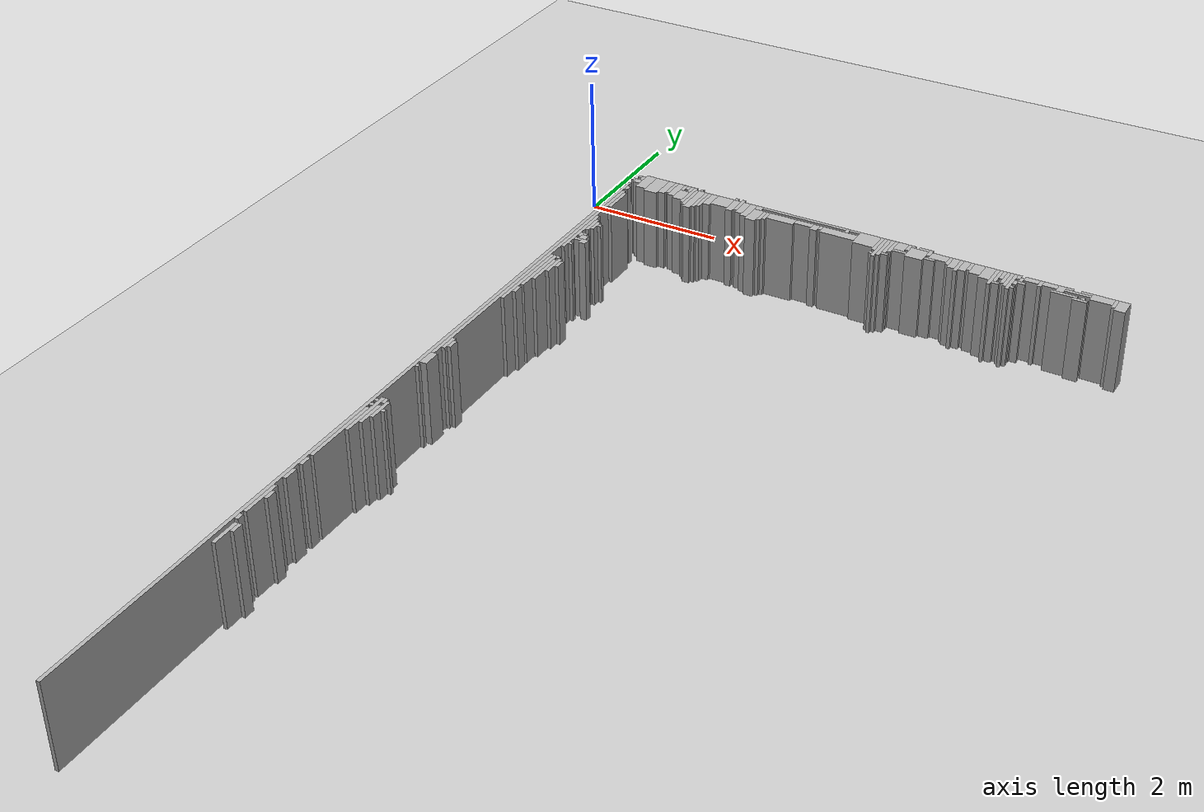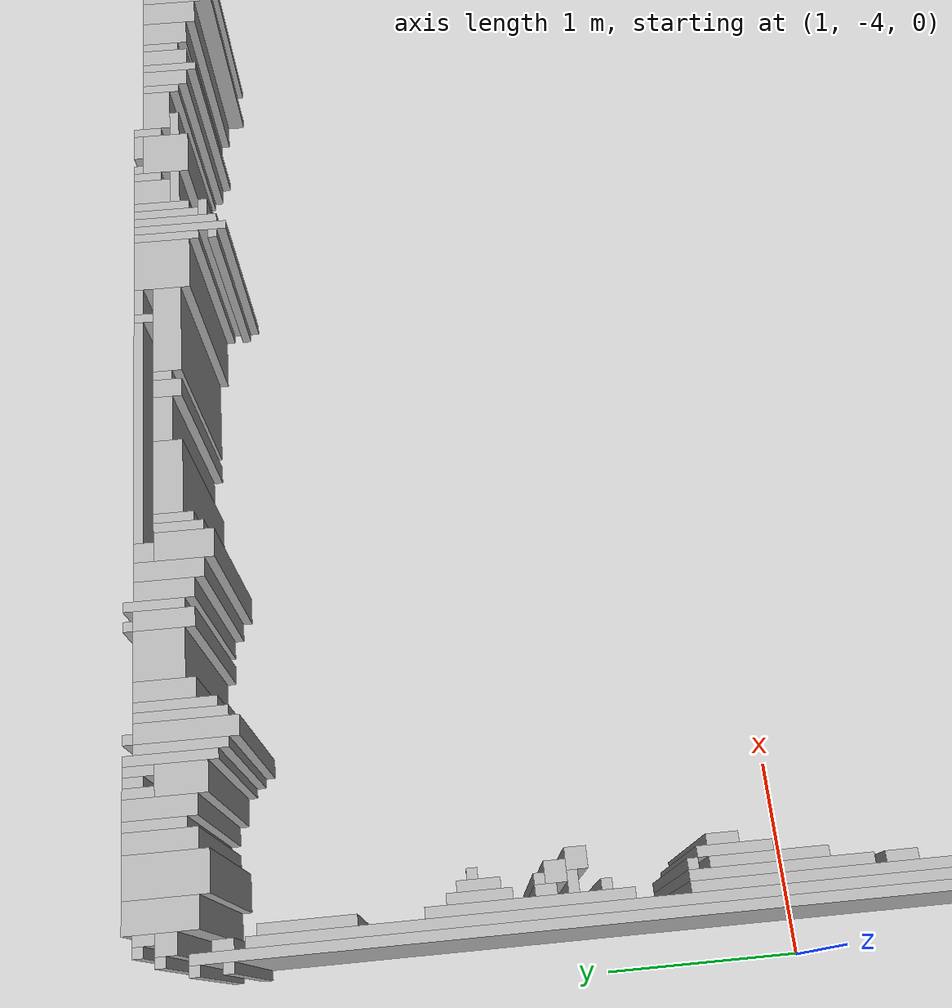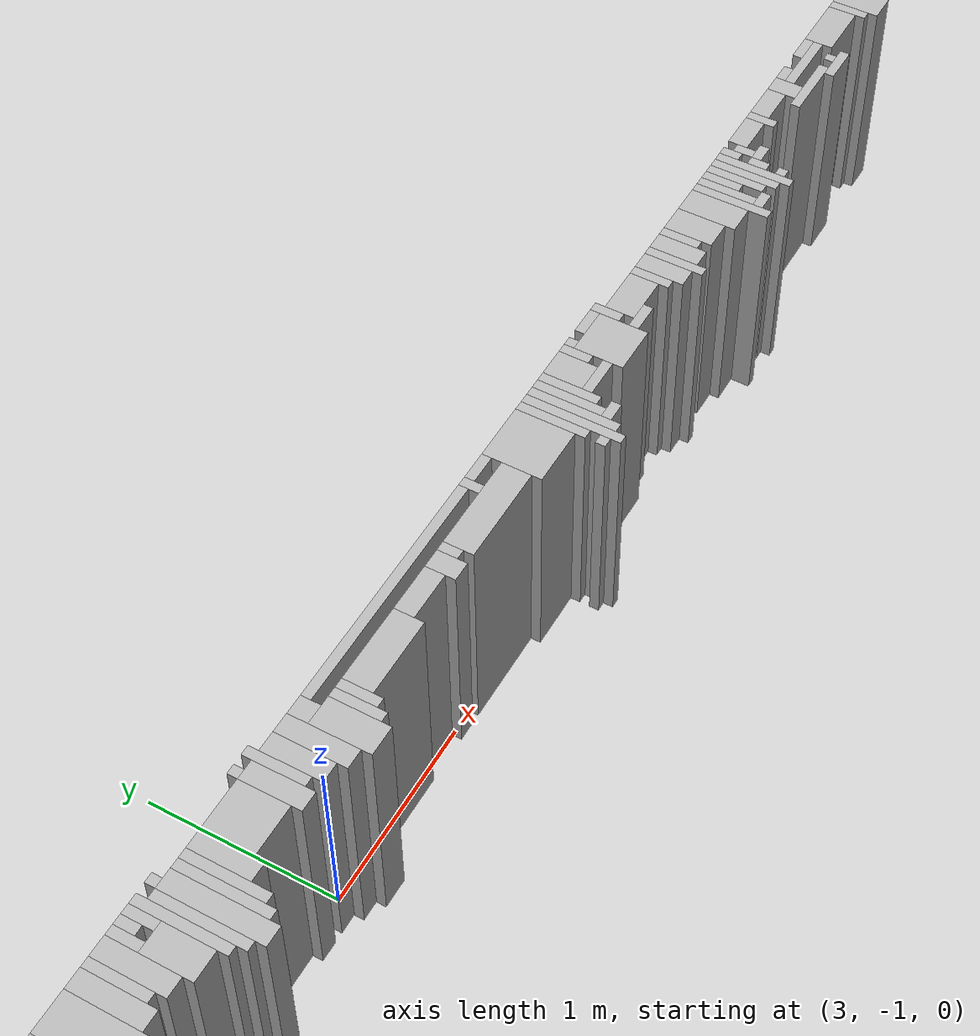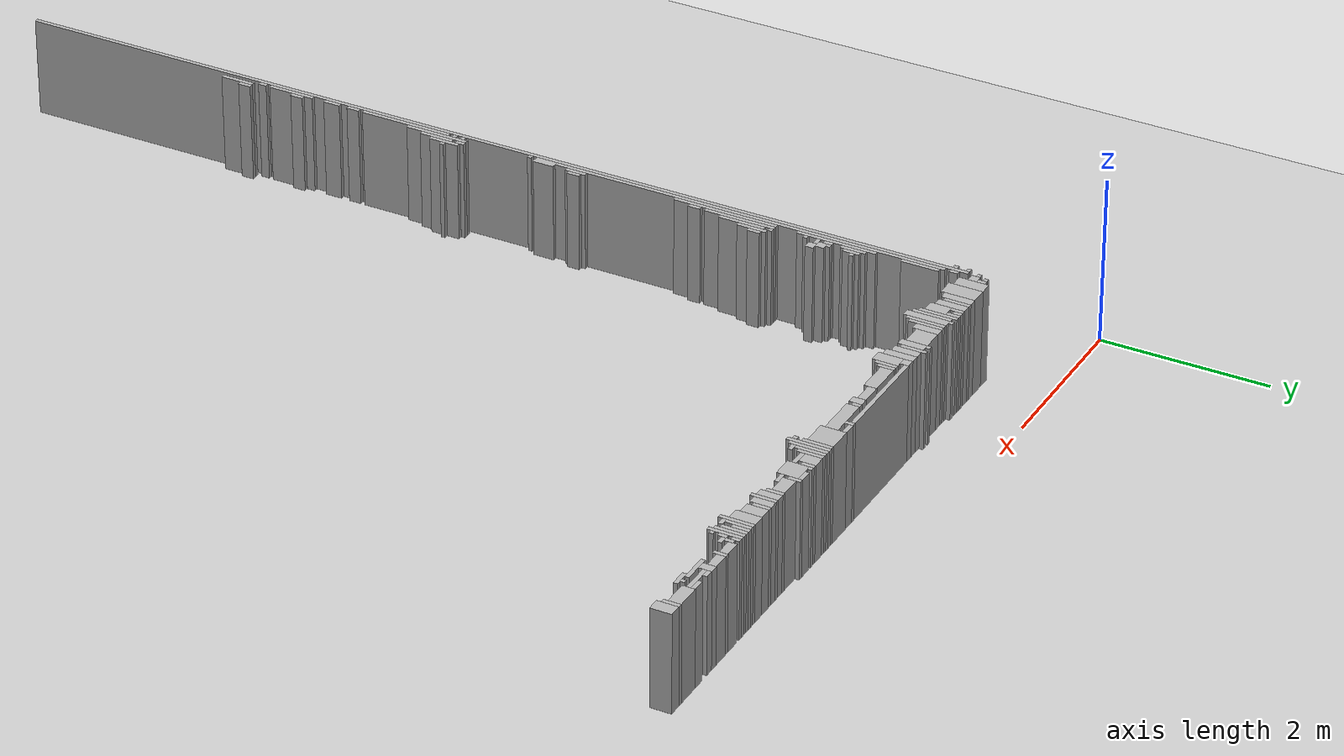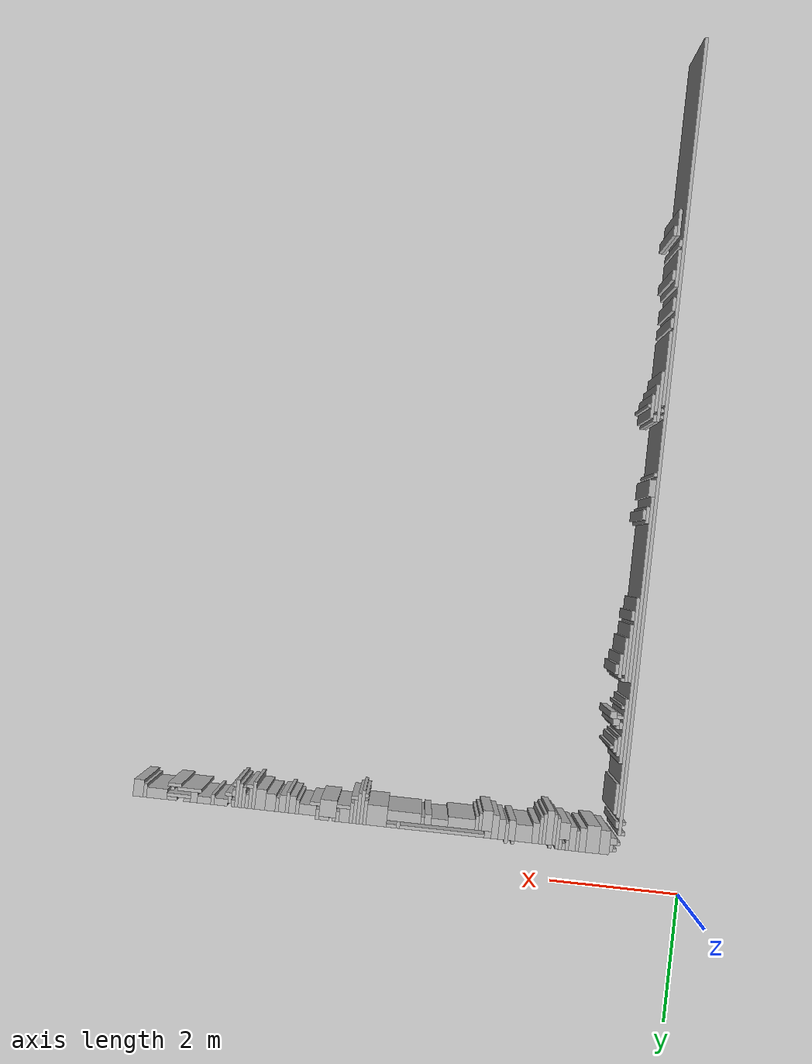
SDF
<sdf version="1.6">
 <world name="d10_floor">
  <include><uri>model://sun</uri></include>
  <include><uri>model://ground_plane</uri></include>
  <model name="d10_walls">
   <static>true</static>
   <link name="w870">
    <pose>1.200 -6.945 0.60 0 0 0</pose>
    <collision name="c"><geometry><box><size>0.050 11.800 1.20</size></box></geometry></collision>
    <visual name="v">
     <geometry><box><size>0.050 11.800 1.20</size></box></geometry>
     <material><ambient>0.6 0.6 0.6 1</ambient><diffuse>0.7 0.7 0.7 1</diffuse></material>
    </visual>
   </link>
   <link name="w1039">
    <pose>1.300 -10.095 0.60 0 0 0</pose>
    <collision name="c"><geometry><box><size>0.050 0.400 1.20</size></box></geometry></collision>
    <visual name="v">
     <geometry><box><size>0.050 0.400 1.20</size></box></geometry>
     <material><ambient>0.6 0.6 0.6 1</ambient><diffuse>0.7 0.7 0.7 1</diffuse></material>
    </visual>
   </link>
   <link name="w1043">
    <pose>1.350 -9.970 0.60 0 0 0</pose>
    <collision name="c"><geometry><box><size>0.050 0.150 1.20</size></box></geometry></collision>
    <visual name="v">
     <geometry><box><size>0.050 0.150 1.20</size></box></geometry>
     <material><ambient>0.6 0.6 0.6 1</ambient><diffuse>0.7 0.7 0.7 1</diffuse></material>
    </visual>
   </link>
   <link name="w1048">
    <pose>1.250 -9.795 0.60 0 0 0</pose>
    <collision name="c"><geometry><box><size>0.050 0.100 1.20</size></box></geometry></collision>
    <visual name="v">
     <geometry><box><size>0.050 0.100 1.20</size></box></geometry>
     <material><ambient>0.6 0.6 0.6 1</ambient><diffuse>0.7 0.7 0.7 1</diffuse></material>
    </visual>
   </link>
   <link name="w1053">
    <pose>1.250 -9.420 0.60 0 0 0</pose>
    <collision name="c"><geometry><box><size>0.050 0.550 1.20</size></box></geometry></collision>
    <visual name="v">
     <geometry><box><size>0.050 0.550 1.20</size></box></geometry>
     <material><ambient>0.6 0.6 0.6 1</ambient><diffuse>0.7 0.7 0.7 1</diffuse></material>
    </visual>
   </link>
   <link name="w1058">
    <pose>1.300 -9.320 0.60 0 0 0</pose>
    <collision name="c"><geometry><box><size>0.050 0.150 1.20</size></box></geometry></collision>
    <visual name="v">
     <geometry><box><size>0.050 0.150 1.20</size></box></geometry>
     <material><ambient>0.6 0.6 0.6 1</ambient><diffuse>0.7 0.7 0.7 1</diffuse></material>
    </visual>
   </link>
   <link name="w1066">
    <pose>1.250 -8.895 0.60 0 0 0</pose>
    <collision name="c"><geometry><box><size>0.050 0.200 1.20</size></box></geometry></collision>
    <visual name="v">
     <geometry><box><size>0.050 0.200 1.20</size></box></geometry>
     <material><ambient>0.6 0.6 0.6 1</ambient><diffuse>0.7 0.7 0.7 1</diffuse></material>
    </visual>
   </link>
   <link name="w1068">
    <pose>1.250 -8.620 0.60 0 0 0</pose>
    <collision name="c"><geometry><box><size>0.050 0.150 1.20</size></box></geometry></collision>
    <visual name="v">
     <geometry><box><size>0.050 0.150 1.20</size></box></geometry>
     <material><ambient>0.6 0.6 0.6 1</ambient><diffuse>0.7 0.7 0.7 1</diffuse></material>
    </visual>
   </link>
   <link name="w1071">
    <pose>1.250 -7.945 0.60 0 0 0</pose>
    <collision name="c"><geometry><box><size>0.050 1.100 1.20</size></box></geometry></collision>
    <visual name="v">
     <geometry><box><size>0.050 1.100 1.20</size></box></geometry>
     <material><ambient>0.6 0.6 0.6 1</ambient><diffuse>0.7 0.7 0.7 1</diffuse></material>
    </visual>
   </link>
   <link name="w1081">
    <pose>1.300 -7.520 0.60 0 0 0</pose>
    <collision name="c"><geometry><box><size>0.050 0.750 1.20</size></box></geometry></collision>
    <visual name="v">
     <geometry><box><size>0.050 0.750 1.20</size></box></geometry>
     <material><ambient>0.6 0.6 0.6 1</ambient><diffuse>0.7 0.7 0.7 1</diffuse></material>
    </visual>
   </link>
   <link name="w1088">
    <pose>1.350 -7.495 0.60 0 0 0</pose>
    <collision name="c"><geometry><box><size>0.050 0.400 1.20</size></box></geometry></collision>
    <visual name="v">
     <geometry><box><size>0.050 0.400 1.20</size></box></geometry>
     <material><ambient>0.6 0.6 0.6 1</ambient><diffuse>0.7 0.7 0.7 1</diffuse></material>
    </visual>
   </link>
   <link name="w1090">
    <pose>1.400 -7.370 0.60 0 0 0</pose>
    <collision name="c"><geometry><box><size>0.050 0.350 1.20</size></box></geometry></collision>
    <visual name="v">
     <geometry><box><size>0.050 0.350 1.20</size></box></geometry>
     <material><ambient>0.6 0.6 0.6 1</ambient><diffuse>0.7 0.7 0.7 1</diffuse></material>
    </visual>
   </link>
   <link name="w1094">
    <pose>1.450 -7.370 0.60 0 0 0</pose>
    <collision name="c"><geometry><box><size>0.050 0.050 1.20</size></box></geometry></collision>
    <visual name="v">
     <geometry><box><size>0.050 0.050 1.20</size></box></geometry>
     <material><ambient>0.6 0.6 0.6 1</ambient><diffuse>0.7 0.7 0.7 1</diffuse></material>
    </visual>
   </link>
   <link name="w1095">
    <pose>1.250 -7.320 0.60 0 0 0</pose>
    <collision name="c"><geometry><box><size>0.050 0.050 1.20</size></box></geometry></collision>
    <visual name="v">
     <geometry><box><size>0.050 0.050 1.20</size></box></geometry>
     <material><ambient>0.6 0.6 0.6 1</ambient><diffuse>0.7 0.7 0.7 1</diffuse></material>
    </visual>
   </link>
   <link name="w1097">
    <pose>1.250 -7.220 0.60 0 0 0</pose>
    <collision name="c"><geometry><box><size>0.050 0.050 1.20</size></box></geometry></collision>
    <visual name="v">
     <geometry><box><size>0.050 0.050 1.20</size></box></geometry>
     <material><ambient>0.6 0.6 0.6 1</ambient><diffuse>0.7 0.7 0.7 1</diffuse></material>
    </visual>
   </link>
   <link name="w1098">
    <pose>1.350 -7.195 0.60 0 0 0</pose>
    <collision name="c"><geometry><box><size>0.050 0.100 1.20</size></box></geometry></collision>
    <visual name="v">
     <geometry><box><size>0.050 0.100 1.20</size></box></geometry>
     <material><ambient>0.6 0.6 0.6 1</ambient><diffuse>0.7 0.7 0.7 1</diffuse></material>
    </visual>
   </link>
   <link name="w1116">
    <pose>1.250 -6.370 0.60 0 0 0</pose>
    <collision name="c"><geometry><box><size>0.050 0.050 1.20</size></box></geometry></collision>
    <visual name="v">
     <geometry><box><size>0.050 0.050 1.20</size></box></geometry>
     <material><ambient>0.6 0.6 0.6 1</ambient><diffuse>0.7 0.7 0.7 1</diffuse></material>
    </visual>
   </link>
   <link name="w1118">
    <pose>1.275 -6.170 0.60 0 0 0</pose>
    <collision name="c"><geometry><box><size>0.100 0.250 1.20</size></box></geometry></collision>
    <visual name="v">
     <geometry><box><size>0.100 0.250 1.20</size></box></geometry>
     <material><ambient>0.6 0.6 0.6 1</ambient><diffuse>0.7 0.7 0.7 1</diffuse></material>
    </visual>
   </link>
   <link name="w1124">
    <pose>1.250 -3.670 0.60 0 0 0</pose>
    <collision name="c"><geometry><box><size>0.050 4.750 1.20</size></box></geometry></collision>
    <visual name="v">
     <geometry><box><size>0.050 4.750 1.20</size></box></geometry>
     <material><ambient>0.6 0.6 0.6 1</ambient><diffuse>0.7 0.7 0.7 1</diffuse></material>
    </visual>
   </link>
   <link name="w1129">
    <pose>1.300 -5.770 0.60 0 0 0</pose>
    <collision name="c"><geometry><box><size>0.050 0.250 1.20</size></box></geometry></collision>
    <visual name="v">
     <geometry><box><size>0.050 0.250 1.20</size></box></geometry>
     <material><ambient>0.6 0.6 0.6 1</ambient><diffuse>0.7 0.7 0.7 1</diffuse></material>
    </visual>
   </link>
   <link name="w1130">
    <pose>1.350 -5.770 0.60 0 0 0</pose>
    <collision name="c"><geometry><box><size>0.050 0.150 1.20</size></box></geometry></collision>
    <visual name="v">
     <geometry><box><size>0.050 0.150 1.20</size></box></geometry>
     <material><ambient>0.6 0.6 0.6 1</ambient><diffuse>0.7 0.7 0.7 1</diffuse></material>
    </visual>
   </link>
   <link name="w1167">
    <pose>1.300 -3.920 0.60 0 0 0</pose>
    <collision name="c"><geometry><box><size>0.050 1.250 1.20</size></box></geometry></collision>
    <visual name="v">
     <geometry><box><size>0.050 1.250 1.20</size></box></geometry>
     <material><ambient>0.6 0.6 0.6 1</ambient><diffuse>0.7 0.7 0.7 1</diffuse></material>
    </visual>
   </link>
   <link name="w1173">
    <pose>1.350 -4.270 0.60 0 0 0</pose>
    <collision name="c"><geometry><box><size>0.050 0.150 1.20</size></box></geometry></collision>
    <visual name="v">
     <geometry><box><size>0.050 0.150 1.20</size></box></geometry>
     <material><ambient>0.6 0.6 0.6 1</ambient><diffuse>0.7 0.7 0.7 1</diffuse></material>
    </visual>
   </link>
   <link name="w1179">
    <pose>1.350 -3.720 0.60 0 0 0</pose>
    <collision name="c"><geometry><box><size>0.050 0.850 1.20</size></box></geometry></collision>
    <visual name="v">
     <geometry><box><size>0.050 0.850 1.20</size></box></geometry>
     <material><ambient>0.6 0.6 0.6 1</ambient><diffuse>0.7 0.7 0.7 1</diffuse></material>
    </visual>
   </link>
   <link name="w1188">
    <pose>1.400 -3.670 0.60 0 0 0</pose>
    <collision name="c"><geometry><box><size>0.050 0.550 1.20</size></box></geometry></collision>
    <visual name="v">
     <geometry><box><size>0.050 0.550 1.20</size></box></geometry>
     <material><ambient>0.6 0.6 0.6 1</ambient><diffuse>0.7 0.7 0.7 1</diffuse></material>
    </visual>
   </link>
   <link name="w1192">
    <pose>1.450 -3.520 0.60 0 0 0</pose>
    <collision name="c"><geometry><box><size>0.050 0.350 1.20</size></box></geometry></collision>
    <visual name="v">
     <geometry><box><size>0.050 0.350 1.20</size></box></geometry>
     <material><ambient>0.6 0.6 0.6 1</ambient><diffuse>0.7 0.7 0.7 1</diffuse></material>
    </visual>
   </link>
   <link name="w1201">
    <pose>1.500 -3.470 0.60 0 0 0</pose>
    <collision name="c"><geometry><box><size>0.050 0.150 1.20</size></box></geometry></collision>
    <visual name="v">
     <geometry><box><size>0.050 0.150 1.20</size></box></geometry>
     <material><ambient>0.6 0.6 0.6 1</ambient><diffuse>0.7 0.7 0.7 1</diffuse></material>
    </visual>
   </link>
   <link name="w1205">
    <pose>1.400 -3.320 0.60 0 0 0</pose>
    <collision name="c"><geometry><box><size>0.050 0.050 1.20</size></box></geometry></collision>
    <visual name="v">
     <geometry><box><size>0.050 0.050 1.20</size></box></geometry>
     <material><ambient>0.6 0.6 0.6 1</ambient><diffuse>0.7 0.7 0.7 1</diffuse></material>
    </visual>
   </link>
   <link name="w1211">
    <pose>1.300 -2.570 0.60 0 0 0</pose>
    <collision name="c"><geometry><box><size>0.050 0.950 1.20</size></box></geometry></collision>
    <visual name="v">
     <geometry><box><size>0.050 0.950 1.20</size></box></geometry>
     <material><ambient>0.6 0.6 0.6 1</ambient><diffuse>0.7 0.7 0.7 1</diffuse></material>
    </visual>
   </link>
   <link name="w1215">
    <pose>1.350 -2.920 0.60 0 0 0</pose>
    <collision name="c"><geometry><box><size>0.050 0.050 1.20</size></box></geometry></collision>
    <visual name="v">
     <geometry><box><size>0.050 0.050 1.20</size></box></geometry>
     <material><ambient>0.6 0.6 0.6 1</ambient><diffuse>0.7 0.7 0.7 1</diffuse></material>
    </visual>
   </link>
   <link name="w1218">
    <pose>1.475 -2.795 0.60 0 0 0</pose>
    <collision name="c"><geometry><box><size>0.100 0.100 1.20</size></box></geometry></collision>
    <visual name="v">
     <geometry><box><size>0.100 0.100 1.20</size></box></geometry>
     <material><ambient>0.6 0.6 0.6 1</ambient><diffuse>0.7 0.7 0.7 1</diffuse></material>
    </visual>
   </link>
   <link name="w1222">
    <pose>1.375 -2.770 0.60 0 0 0</pose>
    <collision name="c"><geometry><box><size>0.100 0.050 1.20</size></box></geometry></collision>
    <visual name="v">
     <geometry><box><size>0.100 0.050 1.20</size></box></geometry>
     <material><ambient>0.6 0.6 0.6 1</ambient><diffuse>0.7 0.7 0.7 1</diffuse></material>
    </visual>
   </link>
   <link name="w1226">
    <pose>1.425 -2.695 0.60 0 0 0</pose>
    <collision name="c"><geometry><box><size>0.100 0.100 1.20</size></box></geometry></collision>
    <visual name="v">
     <geometry><box><size>0.100 0.100 1.20</size></box></geometry>
     <material><ambient>0.6 0.6 0.6 1</ambient><diffuse>0.7 0.7 0.7 1</diffuse></material>
    </visual>
   </link>
   <link name="w1230">
    <pose>1.350 -2.645 0.60 0 0 0</pose>
    <collision name="c"><geometry><box><size>0.050 0.100 1.20</size></box></geometry></collision>
    <visual name="v">
     <geometry><box><size>0.050 0.100 1.20</size></box></geometry>
     <material><ambient>0.6 0.6 0.6 1</ambient><diffuse>0.7 0.7 0.7 1</diffuse></material>
    </visual>
   </link>
   <link name="w1236">
    <pose>1.400 -2.620 0.60 0 0 0</pose>
    <collision name="c"><geometry><box><size>0.050 0.050 1.20</size></box></geometry></collision>
    <visual name="v">
     <geometry><box><size>0.050 0.050 1.20</size></box></geometry>
     <material><ambient>0.6 0.6 0.6 1</ambient><diffuse>0.7 0.7 0.7 1</diffuse></material>
    </visual>
   </link>
   <link name="w1249">
    <pose>1.350 -2.345 0.60 0 0 0</pose>
    <collision name="c"><geometry><box><size>0.050 0.300 1.20</size></box></geometry></collision>
    <visual name="v">
     <geometry><box><size>0.050 0.300 1.20</size></box></geometry>
     <material><ambient>0.6 0.6 0.6 1</ambient><diffuse>0.7 0.7 0.7 1</diffuse></material>
    </visual>
   </link>
   <link name="w1253">
    <pose>1.400 -2.345 0.60 0 0 0</pose>
    <collision name="c"><geometry><box><size>0.050 0.200 1.20</size></box></geometry></collision>
    <visual name="v">
     <geometry><box><size>0.050 0.200 1.20</size></box></geometry>
     <material><ambient>0.6 0.6 0.6 1</ambient><diffuse>0.7 0.7 0.7 1</diffuse></material>
    </visual>
   </link>
   <link name="w1262">
    <pose>1.450 -2.320 0.60 0 0 0</pose>
    <collision name="c"><geometry><box><size>0.050 0.050 1.20</size></box></geometry></collision>
    <visual name="v">
     <geometry><box><size>0.050 0.050 1.20</size></box></geometry>
     <material><ambient>0.6 0.6 0.6 1</ambient><diffuse>0.7 0.7 0.7 1</diffuse></material>
    </visual>
   </link>
   <link name="w1293">
    <pose>1.300 -1.570 0.60 0 0 0</pose>
    <collision name="c"><geometry><box><size>0.050 0.450 1.20</size></box></geometry></collision>
    <visual name="v">
     <geometry><box><size>0.050 0.450 1.20</size></box></geometry>
     <material><ambient>0.6 0.6 0.6 1</ambient><diffuse>0.7 0.7 0.7 1</diffuse></material>
    </visual>
   </link>
   <link name="w1336">
    <pose>2.225 -1.045 0.60 0 0 0</pose>
    <collision name="c"><geometry><box><size>0.100 0.500 1.20</size></box></geometry></collision>
    <visual name="v">
     <geometry><box><size>0.100 0.500 1.20</size></box></geometry>
     <material><ambient>0.6 0.6 0.6 1</ambient><diffuse>0.7 0.7 0.7 1</diffuse></material>
    </visual>
   </link>
   <link name="w1337">
    <pose>5.000 -1.045 0.60 0 0 0</pose>
    <collision name="c"><geometry><box><size>0.050 0.500 1.20</size></box></geometry></collision>
    <visual name="v">
     <geometry><box><size>0.050 0.500 1.20</size></box></geometry>
     <material><ambient>0.6 0.6 0.6 1</ambient><diffuse>0.7 0.7 0.7 1</diffuse></material>
    </visual>
   </link>
   <link name="w1338">
    <pose>1.150 -1.220 0.60 0 0 0</pose>
    <collision name="c"><geometry><box><size>0.050 0.050 1.20</size></box></geometry></collision>
    <visual name="v">
     <geometry><box><size>0.050 0.050 1.20</size></box></geometry>
     <material><ambient>0.6 0.6 0.6 1</ambient><diffuse>0.7 0.7 0.7 1</diffuse></material>
    </visual>
   </link>
   <link name="w1339">
    <pose>1.250 -1.195 0.60 0 0 0</pose>
    <collision name="c"><geometry><box><size>0.050 0.100 1.20</size></box></geometry></collision>
    <visual name="v">
     <geometry><box><size>0.050 0.100 1.20</size></box></geometry>
     <material><ambient>0.6 0.6 0.6 1</ambient><diffuse>0.7 0.7 0.7 1</diffuse></material>
    </visual>
   </link>
   <link name="w1340">
    <pose>2.150 -1.020 0.60 0 0 0</pose>
    <collision name="c"><geometry><box><size>0.050 0.450 1.20</size></box></geometry></collision>
    <visual name="v">
     <geometry><box><size>0.050 0.450 1.20</size></box></geometry>
     <material><ambient>0.6 0.6 0.6 1</ambient><diffuse>0.7 0.7 0.7 1</diffuse></material>
    </visual>
   </link>
   <link name="w1341">
    <pose>2.300 -1.020 0.60 0 0 0</pose>
    <collision name="c"><geometry><box><size>0.050 0.450 1.20</size></box></geometry></collision>
    <visual name="v">
     <geometry><box><size>0.050 0.450 1.20</size></box></geometry>
     <material><ambient>0.6 0.6 0.6 1</ambient><diffuse>0.7 0.7 0.7 1</diffuse></material>
    </visual>
   </link>
   <link name="w1342">
    <pose>4.950 -1.220 0.60 0 0 0</pose>
    <collision name="c"><geometry><box><size>0.050 0.050 1.20</size></box></geometry></collision>
    <visual name="v">
     <geometry><box><size>0.050 0.050 1.20</size></box></geometry>
     <material><ambient>0.6 0.6 0.6 1</ambient><diffuse>0.7 0.7 0.7 1</diffuse></material>
    </visual>
   </link>
   <link name="w1343">
    <pose>5.050 -1.020 0.60 0 0 0</pose>
    <collision name="c"><geometry><box><size>0.050 0.450 1.20</size></box></geometry></collision>
    <visual name="v">
     <geometry><box><size>0.050 0.450 1.20</size></box></geometry>
     <material><ambient>0.6 0.6 0.6 1</ambient><diffuse>0.7 0.7 0.7 1</diffuse></material>
    </visual>
   </link>
   <link name="w1344">
    <pose>6.600 -1.045 0.60 0 0 0</pose>
    <collision name="c"><geometry><box><size>0.050 0.400 1.20</size></box></geometry></collision>
    <visual name="v">
     <geometry><box><size>0.050 0.400 1.20</size></box></geometry>
     <material><ambient>0.6 0.6 0.6 1</ambient><diffuse>0.7 0.7 0.7 1</diffuse></material>
    </visual>
   </link>
   <link name="w1345">
    <pose>6.850 -1.045 0.60 0 0 0</pose>
    <collision name="c"><geometry><box><size>0.050 0.400 1.20</size></box></geometry></collision>
    <visual name="v">
     <geometry><box><size>0.050 0.400 1.20</size></box></geometry>
     <material><ambient>0.6 0.6 0.6 1</ambient><diffuse>0.7 0.7 0.7 1</diffuse></material>
    </visual>
   </link>
   <link name="w1351">
    <pose>2.100 -0.970 0.60 0 0 0</pose>
    <collision name="c"><geometry><box><size>0.050 0.450 1.20</size></box></geometry></collision>
    <visual name="v">
     <geometry><box><size>0.050 0.450 1.20</size></box></geometry>
     <material><ambient>0.6 0.6 0.6 1</ambient><diffuse>0.7 0.7 0.7 1</diffuse></material>
    </visual>
   </link>
   <link name="w1352">
    <pose>2.350 -0.995 0.60 0 0 0</pose>
    <collision name="c"><geometry><box><size>0.050 0.400 1.20</size></box></geometry></collision>
    <visual name="v">
     <geometry><box><size>0.050 0.400 1.20</size></box></geometry>
     <material><ambient>0.6 0.6 0.6 1</ambient><diffuse>0.7 0.7 0.7 1</diffuse></material>
    </visual>
   </link>
   <link name="w1353">
    <pose>3.150 -1.045 0.60 0 0 0</pose>
    <collision name="c"><geometry><box><size>0.150 0.300 1.20</size></box></geometry></collision>
    <visual name="v">
     <geometry><box><size>0.150 0.300 1.20</size></box></geometry>
     <material><ambient>0.6 0.6 0.6 1</ambient><diffuse>0.7 0.7 0.7 1</diffuse></material>
    </visual>
   </link>
   <link name="w1354">
    <pose>5.125 -1.170 0.60 0 0 0</pose>
    <collision name="c"><geometry><box><size>0.100 0.050 1.20</size></box></geometry></collision>
    <visual name="v">
     <geometry><box><size>0.100 0.050 1.20</size></box></geometry>
     <material><ambient>0.6 0.6 0.6 1</ambient><diffuse>0.7 0.7 0.7 1</diffuse></material>
    </visual>
   </link>
   <link name="w1355">
    <pose>6.675 -1.170 0.60 0 0 0</pose>
    <collision name="c"><geometry><box><size>0.100 0.050 1.20</size></box></geometry></collision>
    <visual name="v">
     <geometry><box><size>0.100 0.050 1.20</size></box></geometry>
     <material><ambient>0.6 0.6 0.6 1</ambient><diffuse>0.7 0.7 0.7 1</diffuse></material>
    </visual>
   </link>
   <link name="w1356">
    <pose>6.800 -1.020 0.60 0 0 0</pose>
    <collision name="c"><geometry><box><size>0.050 0.350 1.20</size></box></geometry></collision>
    <visual name="v">
     <geometry><box><size>0.050 0.350 1.20</size></box></geometry>
     <material><ambient>0.6 0.6 0.6 1</ambient><diffuse>0.7 0.7 0.7 1</diffuse></material>
    </visual>
   </link>
   <link name="w1357">
    <pose>6.900 -1.170 0.60 0 0 0</pose>
    <collision name="c"><geometry><box><size>0.050 0.050 1.20</size></box></geometry></collision>
    <visual name="v">
     <geometry><box><size>0.050 0.050 1.20</size></box></geometry>
     <material><ambient>0.6 0.6 0.6 1</ambient><diffuse>0.7 0.7 0.7 1</diffuse></material>
    </visual>
   </link>
   <link name="w1363">
    <pose>1.575 -0.945 0.60 0 0 0</pose>
    <collision name="c"><geometry><box><size>0.200 0.400 1.20</size></box></geometry></collision>
    <visual name="v">
     <geometry><box><size>0.200 0.400 1.20</size></box></geometry>
     <material><ambient>0.6 0.6 0.6 1</ambient><diffuse>0.7 0.7 0.7 1</diffuse></material>
    </visual>
   </link>
   <link name="w1364">
    <pose>2.000 -1.020 0.60 0 0 0</pose>
    <collision name="c"><geometry><box><size>0.150 0.250 1.20</size></box></geometry></collision>
    <visual name="v">
     <geometry><box><size>0.150 0.250 1.20</size></box></geometry>
     <material><ambient>0.6 0.6 0.6 1</ambient><diffuse>0.7 0.7 0.7 1</diffuse></material>
    </visual>
   </link>
   <link name="w1365">
    <pose>3.025 -0.970 0.60 0 0 0</pose>
    <collision name="c"><geometry><box><size>0.100 0.350 1.20</size></box></geometry></collision>
    <visual name="v">
     <geometry><box><size>0.100 0.350 1.20</size></box></geometry>
     <material><ambient>0.6 0.6 0.6 1</ambient><diffuse>0.7 0.7 0.7 1</diffuse></material>
    </visual>
   </link>
   <link name="w1366">
    <pose>3.250 -1.020 0.60 0 0 0</pose>
    <collision name="c"><geometry><box><size>0.050 0.250 1.20</size></box></geometry></collision>
    <visual name="v">
     <geometry><box><size>0.050 0.250 1.20</size></box></geometry>
     <material><ambient>0.6 0.6 0.6 1</ambient><diffuse>0.7 0.7 0.7 1</diffuse></material>
    </visual>
   </link>
   <link name="w1367">
    <pose>4.950 -0.970 0.60 0 0 0</pose>
    <collision name="c"><geometry><box><size>0.050 0.350 1.20</size></box></geometry></collision>
    <visual name="v">
     <geometry><box><size>0.050 0.350 1.20</size></box></geometry>
     <material><ambient>0.6 0.6 0.6 1</ambient><diffuse>0.7 0.7 0.7 1</diffuse></material>
    </visual>
   </link>
   <link name="w1368">
    <pose>5.100 -0.970 0.60 0 0 0</pose>
    <collision name="c"><geometry><box><size>0.050 0.350 1.20</size></box></geometry></collision>
    <visual name="v">
     <geometry><box><size>0.050 0.350 1.20</size></box></geometry>
     <material><ambient>0.6 0.6 0.6 1</ambient><diffuse>0.7 0.7 0.7 1</diffuse></material>
    </visual>
   </link>
   <link name="w1369">
    <pose>6.100 -0.995 0.60 0 0 0</pose>
    <collision name="c"><geometry><box><size>0.050 0.300 1.20</size></box></geometry></collision>
    <visual name="v">
     <geometry><box><size>0.050 0.300 1.20</size></box></geometry>
     <material><ambient>0.6 0.6 0.6 1</ambient><diffuse>0.7 0.7 0.7 1</diffuse></material>
    </visual>
   </link>
   <link name="w1370">
    <pose>6.500 -0.995 0.60 0 0 0</pose>
    <collision name="c"><geometry><box><size>0.150 0.300 1.20</size></box></geometry></collision>
    <visual name="v">
     <geometry><box><size>0.150 0.300 1.20</size></box></geometry>
     <material><ambient>0.6 0.6 0.6 1</ambient><diffuse>0.7 0.7 0.7 1</diffuse></material>
    </visual>
   </link>
   <link name="w1371">
    <pose>6.650 -0.995 0.60 0 0 0</pose>
    <collision name="c"><geometry><box><size>0.050 0.300 1.20</size></box></geometry></collision>
    <visual name="v">
     <geometry><box><size>0.050 0.300 1.20</size></box></geometry>
     <material><ambient>0.6 0.6 0.6 1</ambient><diffuse>0.7 0.7 0.7 1</diffuse></material>
    </visual>
   </link>
   <link name="w1372">
    <pose>6.750 -0.995 0.60 0 0 0</pose>
    <collision name="c"><geometry><box><size>0.050 0.300 1.20</size></box></geometry></collision>
    <visual name="v">
     <geometry><box><size>0.050 0.300 1.20</size></box></geometry>
     <material><ambient>0.6 0.6 0.6 1</ambient><diffuse>0.7 0.7 0.7 1</diffuse></material>
    </visual>
   </link>
   <link name="w1384">
    <pose>1.150 -1.070 0.60 0 0 0</pose>
    <collision name="c"><geometry><box><size>0.050 0.050 1.20</size></box></geometry></collision>
    <visual name="v">
     <geometry><box><size>0.050 0.050 1.20</size></box></geometry>
     <material><ambient>0.6 0.6 0.6 1</ambient><diffuse>0.7 0.7 0.7 1</diffuse></material>
    </visual>
   </link>
   <link name="w1385">
    <pose>1.400 -0.920 0.60 0 0 0</pose>
    <collision name="c"><geometry><box><size>0.150 0.350 1.20</size></box></geometry></collision>
    <visual name="v">
     <geometry><box><size>0.150 0.350 1.20</size></box></geometry>
     <material><ambient>0.6 0.6 0.6 1</ambient><diffuse>0.7 0.7 0.7 1</diffuse></material>
    </visual>
   </link>
   <link name="w1386">
    <pose>1.725 -0.920 0.60 0 0 0</pose>
    <collision name="c"><geometry><box><size>0.100 0.350 1.20</size></box></geometry></collision>
    <visual name="v">
     <geometry><box><size>0.100 0.350 1.20</size></box></geometry>
     <material><ambient>0.6 0.6 0.6 1</ambient><diffuse>0.7 0.7 0.7 1</diffuse></material>
    </visual>
   </link>
   <link name="w1387">
    <pose>1.875 -0.920 0.60 0 0 0</pose>
    <collision name="c"><geometry><box><size>0.100 0.350 1.20</size></box></geometry></collision>
    <visual name="v">
     <geometry><box><size>0.100 0.350 1.20</size></box></geometry>
     <material><ambient>0.6 0.6 0.6 1</ambient><diffuse>0.7 0.7 0.7 1</diffuse></material>
    </visual>
   </link>
   <link name="w1388">
    <pose>2.425 -0.945 0.60 0 0 0</pose>
    <collision name="c"><geometry><box><size>0.100 0.300 1.20</size></box></geometry></collision>
    <visual name="v">
     <geometry><box><size>0.100 0.300 1.20</size></box></geometry>
     <material><ambient>0.6 0.6 0.6 1</ambient><diffuse>0.7 0.7 0.7 1</diffuse></material>
    </visual>
   </link>
   <link name="w1389">
    <pose>2.775 -0.945 0.60 0 0 0</pose>
    <collision name="c"><geometry><box><size>0.100 0.300 1.20</size></box></geometry></collision>
    <visual name="v">
     <geometry><box><size>0.100 0.300 1.20</size></box></geometry>
     <material><ambient>0.6 0.6 0.6 1</ambient><diffuse>0.7 0.7 0.7 1</diffuse></material>
    </visual>
   </link>
   <link name="w1390">
    <pose>2.925 -0.945 0.60 0 0 0</pose>
    <collision name="c"><geometry><box><size>0.100 0.300 1.20</size></box></geometry></collision>
    <visual name="v">
     <geometry><box><size>0.100 0.300 1.20</size></box></geometry>
     <material><ambient>0.6 0.6 0.6 1</ambient><diffuse>0.7 0.7 0.7 1</diffuse></material>
    </visual>
   </link>
   <link name="w1391">
    <pose>3.300 -0.995 0.60 0 0 0</pose>
    <collision name="c"><geometry><box><size>0.050 0.200 1.20</size></box></geometry></collision>
    <visual name="v">
     <geometry><box><size>0.050 0.200 1.20</size></box></geometry>
     <material><ambient>0.6 0.6 0.6 1</ambient><diffuse>0.7 0.7 0.7 1</diffuse></material>
    </visual>
   </link>
   <link name="w1392">
    <pose>4.775 -0.945 0.60 0 0 0</pose>
    <collision name="c"><geometry><box><size>0.300 0.300 1.20</size></box></geometry></collision>
    <visual name="v">
     <geometry><box><size>0.300 0.300 1.20</size></box></geometry>
     <material><ambient>0.6 0.6 0.6 1</ambient><diffuse>0.7 0.7 0.7 1</diffuse></material>
    </visual>
   </link>
   <link name="w1393">
    <pose>5.150 -0.945 0.60 0 0 0</pose>
    <collision name="c"><geometry><box><size>0.050 0.300 1.20</size></box></geometry></collision>
    <visual name="v">
     <geometry><box><size>0.050 0.300 1.20</size></box></geometry>
     <material><ambient>0.6 0.6 0.6 1</ambient><diffuse>0.7 0.7 0.7 1</diffuse></material>
    </visual>
   </link>
   <link name="w1394">
    <pose>5.500 -0.970 0.60 0 0 0</pose>
    <collision name="c"><geometry><box><size>0.250 0.250 1.20</size></box></geometry></collision>
    <visual name="v">
     <geometry><box><size>0.250 0.250 1.20</size></box></geometry>
     <material><ambient>0.6 0.6 0.6 1</ambient><diffuse>0.7 0.7 0.7 1</diffuse></material>
    </visual>
   </link>
   <link name="w1395">
    <pose>6.025 -0.970 0.60 0 0 0</pose>
    <collision name="c"><geometry><box><size>0.100 0.250 1.20</size></box></geometry></collision>
    <visual name="v">
     <geometry><box><size>0.100 0.250 1.20</size></box></geometry>
     <material><ambient>0.6 0.6 0.6 1</ambient><diffuse>0.7 0.7 0.7 1</diffuse></material>
    </visual>
   </link>
   <link name="w1396">
    <pose>6.175 -0.970 0.60 0 0 0</pose>
    <collision name="c"><geometry><box><size>0.100 0.250 1.20</size></box></geometry></collision>
    <visual name="v">
     <geometry><box><size>0.100 0.250 1.20</size></box></geometry>
     <material><ambient>0.6 0.6 0.6 1</ambient><diffuse>0.7 0.7 0.7 1</diffuse></material>
    </visual>
   </link>
   <link name="w1397">
    <pose>6.350 -0.970 0.60 0 0 0</pose>
    <collision name="c"><geometry><box><size>0.150 0.250 1.20</size></box></geometry></collision>
    <visual name="v">
     <geometry><box><size>0.150 0.250 1.20</size></box></geometry>
     <material><ambient>0.6 0.6 0.6 1</ambient><diffuse>0.7 0.7 0.7 1</diffuse></material>
    </visual>
   </link>
   <link name="w1398">
    <pose>6.900 -1.045 0.60 0 0 0</pose>
    <collision name="c"><geometry><box><size>0.050 0.100 1.20</size></box></geometry></collision>
    <visual name="v">
     <geometry><box><size>0.050 0.100 1.20</size></box></geometry>
     <material><ambient>0.6 0.6 0.6 1</ambient><diffuse>0.7 0.7 0.7 1</diffuse></material>
    </visual>
   </link>
   <link name="w1399">
    <pose>7.775 -1.070 0.60 0 0 0</pose>
    <collision name="c"><geometry><box><size>0.200 0.050 1.20</size></box></geometry></collision>
    <visual name="v">
     <geometry><box><size>0.200 0.050 1.20</size></box></geometry>
     <material><ambient>0.6 0.6 0.6 1</ambient><diffuse>0.7 0.7 0.7 1</diffuse></material>
    </visual>
   </link>
   <link name="w1400">
    <pose>8.300 -0.970 0.60 0 0 0</pose>
    <collision name="c"><geometry><box><size>0.150 0.250 1.20</size></box></geometry></collision>
    <visual name="v">
     <geometry><box><size>0.150 0.250 1.20</size></box></geometry>
     <material><ambient>0.6 0.6 0.6 1</ambient><diffuse>0.7 0.7 0.7 1</diffuse></material>
    </visual>
   </link>
   <link name="w1412">
    <pose>1.800 -0.895 0.60 0 0 0</pose>
    <collision name="c"><geometry><box><size>0.050 0.300 1.20</size></box></geometry></collision>
    <visual name="v">
     <geometry><box><size>0.050 0.300 1.20</size></box></geometry>
     <material><ambient>0.6 0.6 0.6 1</ambient><diffuse>0.7 0.7 0.7 1</diffuse></material>
    </visual>
   </link>
   <link name="w1413">
    <pose>2.600 -0.920 0.60 0 0 0</pose>
    <collision name="c"><geometry><box><size>0.250 0.250 1.20</size></box></geometry></collision>
    <visual name="v">
     <geometry><box><size>0.250 0.250 1.20</size></box></geometry>
     <material><ambient>0.6 0.6 0.6 1</ambient><diffuse>0.7 0.7 0.7 1</diffuse></material>
    </visual>
   </link>
   <link name="w1414">
    <pose>2.850 -0.895 0.60 0 0 0</pose>
    <collision name="c"><geometry><box><size>0.050 0.300 1.20</size></box></geometry></collision>
    <visual name="v">
     <geometry><box><size>0.050 0.300 1.20</size></box></geometry>
     <material><ambient>0.6 0.6 0.6 1</ambient><diffuse>0.7 0.7 0.7 1</diffuse></material>
    </visual>
   </link>
   <link name="w1415">
    <pose>3.525 -0.970 0.60 0 0 0</pose>
    <collision name="c"><geometry><box><size>0.400 0.150 1.20</size></box></geometry></collision>
    <visual name="v">
     <geometry><box><size>0.400 0.150 1.20</size></box></geometry>
     <material><ambient>0.6 0.6 0.6 1</ambient><diffuse>0.7 0.7 0.7 1</diffuse></material>
    </visual>
   </link>
   <link name="w1416">
    <pose>4.025 -0.970 0.60 0 0 0</pose>
    <collision name="c"><geometry><box><size>0.100 0.150 1.20</size></box></geometry></collision>
    <visual name="v">
     <geometry><box><size>0.100 0.150 1.20</size></box></geometry>
     <material><ambient>0.6 0.6 0.6 1</ambient><diffuse>0.7 0.7 0.7 1</diffuse></material>
    </visual>
   </link>
   <link name="w1417">
    <pose>4.375 -0.970 0.60 0 0 0</pose>
    <collision name="c"><geometry><box><size>0.500 0.150 1.20</size></box></geometry></collision>
    <visual name="v">
     <geometry><box><size>0.500 0.150 1.20</size></box></geometry>
     <material><ambient>0.6 0.6 0.6 1</ambient><diffuse>0.7 0.7 0.7 1</diffuse></material>
    </visual>
   </link>
   <link name="w1418">
    <pose>5.275 -1.020 0.60 0 0 0</pose>
    <collision name="c"><geometry><box><size>0.200 0.050 1.20</size></box></geometry></collision>
    <visual name="v">
     <geometry><box><size>0.200 0.050 1.20</size></box></geometry>
     <material><ambient>0.6 0.6 0.6 1</ambient><diffuse>0.7 0.7 0.7 1</diffuse></material>
    </visual>
   </link>
   <link name="w1419">
    <pose>5.700 -1.020 0.60 0 0 0</pose>
    <collision name="c"><geometry><box><size>0.150 0.050 1.20</size></box></geometry></collision>
    <visual name="v">
     <geometry><box><size>0.150 0.050 1.20</size></box></geometry>
     <material><ambient>0.6 0.6 0.6 1</ambient><diffuse>0.7 0.7 0.7 1</diffuse></material>
    </visual>
   </link>
   <link name="w1420">
    <pose>5.950 -0.945 0.60 0 0 0</pose>
    <collision name="c"><geometry><box><size>0.050 0.200 1.20</size></box></geometry></collision>
    <visual name="v">
     <geometry><box><size>0.050 0.200 1.20</size></box></geometry>
     <material><ambient>0.6 0.6 0.6 1</ambient><diffuse>0.7 0.7 0.7 1</diffuse></material>
    </visual>
   </link>
   <link name="w1421">
    <pose>6.250 -0.945 0.60 0 0 0</pose>
    <collision name="c"><geometry><box><size>0.050 0.200 1.20</size></box></geometry></collision>
    <visual name="v">
     <geometry><box><size>0.050 0.200 1.20</size></box></geometry>
     <material><ambient>0.6 0.6 0.6 1</ambient><diffuse>0.7 0.7 0.7 1</diffuse></material>
    </visual>
   </link>
   <link name="w1422">
    <pose>6.700 -0.945 0.60 0 0 0</pose>
    <collision name="c"><geometry><box><size>0.050 0.200 1.20</size></box></geometry></collision>
    <visual name="v">
     <geometry><box><size>0.050 0.200 1.20</size></box></geometry>
     <material><ambient>0.6 0.6 0.6 1</ambient><diffuse>0.7 0.7 0.7 1</diffuse></material>
    </visual>
   </link>
   <link name="w1423">
    <pose>6.975 -1.020 0.60 0 0 0</pose>
    <collision name="c"><geometry><box><size>0.100 0.050 1.20</size></box></geometry></collision>
    <visual name="v">
     <geometry><box><size>0.100 0.050 1.20</size></box></geometry>
     <material><ambient>0.6 0.6 0.6 1</ambient><diffuse>0.7 0.7 0.7 1</diffuse></material>
    </visual>
   </link>
   <link name="w1424">
    <pose>7.550 -1.020 0.60 0 0 0</pose>
    <collision name="c"><geometry><box><size>0.350 0.050 1.20</size></box></geometry></collision>
    <visual name="v">
     <geometry><box><size>0.350 0.050 1.20</size></box></geometry>
     <material><ambient>0.6 0.6 0.6 1</ambient><diffuse>0.7 0.7 0.7 1</diffuse></material>
    </visual>
   </link>
   <link name="w1425">
    <pose>7.800 -1.020 0.60 0 0 0</pose>
    <collision name="c"><geometry><box><size>0.050 0.050 1.20</size></box></geometry></collision>
    <visual name="v">
     <geometry><box><size>0.050 0.050 1.20</size></box></geometry>
     <material><ambient>0.6 0.6 0.6 1</ambient><diffuse>0.7 0.7 0.7 1</diffuse></material>
    </visual>
   </link>
   <link name="w1426">
    <pose>8.200 -0.945 0.60 0 0 0</pose>
    <collision name="c"><geometry><box><size>0.050 0.200 1.20</size></box></geometry></collision>
    <visual name="v">
     <geometry><box><size>0.050 0.200 1.20</size></box></geometry>
     <material><ambient>0.6 0.6 0.6 1</ambient><diffuse>0.7 0.7 0.7 1</diffuse></material>
    </visual>
   </link>
   <link name="w1434">
    <pose>1.275 -0.945 0.60 0 0 0</pose>
    <collision name="c"><geometry><box><size>0.100 0.100 1.20</size></box></geometry></collision>
    <visual name="v">
     <geometry><box><size>0.100 0.100 1.20</size></box></geometry>
     <material><ambient>0.6 0.6 0.6 1</ambient><diffuse>0.7 0.7 0.7 1</diffuse></material>
    </visual>
   </link>
   <link name="w1435">
    <pose>3.850 -0.945 0.60 0 0 0</pose>
    <collision name="c"><geometry><box><size>0.250 0.100 1.20</size></box></geometry></collision>
    <visual name="v">
     <geometry><box><size>0.250 0.100 1.20</size></box></geometry>
     <material><ambient>0.6 0.6 0.6 1</ambient><diffuse>0.7 0.7 0.7 1</diffuse></material>
    </visual>
   </link>
   <link name="w1436">
    <pose>4.100 -0.945 0.60 0 0 0</pose>
    <collision name="c"><geometry><box><size>0.050 0.100 1.20</size></box></geometry></collision>
    <visual name="v">
     <geometry><box><size>0.050 0.100 1.20</size></box></geometry>
     <material><ambient>0.6 0.6 0.6 1</ambient><diffuse>0.7 0.7 0.7 1</diffuse></material>
    </visual>
   </link>
   <link name="w1437">
    <pose>5.250 -0.895 0.60 0 0 0</pose>
    <collision name="c"><geometry><box><size>0.150 0.200 1.20</size></box></geometry></collision>
    <visual name="v">
     <geometry><box><size>0.150 0.200 1.20</size></box></geometry>
     <material><ambient>0.6 0.6 0.6 1</ambient><diffuse>0.7 0.7 0.7 1</diffuse></material>
    </visual>
   </link>
   <link name="w1438">
    <pose>5.800 -0.920 0.60 0 0 0</pose>
    <collision name="c"><geometry><box><size>0.250 0.150 1.20</size></box></geometry></collision>
    <visual name="v">
     <geometry><box><size>0.250 0.150 1.20</size></box></geometry>
     <material><ambient>0.6 0.6 0.6 1</ambient><diffuse>0.7 0.7 0.7 1</diffuse></material>
    </visual>
   </link>
   <link name="w1439">
    <pose>6.950 -0.945 0.60 0 0 0</pose>
    <collision name="c"><geometry><box><size>0.050 0.100 1.20</size></box></geometry></collision>
    <visual name="v">
     <geometry><box><size>0.050 0.100 1.20</size></box></geometry>
     <material><ambient>0.6 0.6 0.6 1</ambient><diffuse>0.7 0.7 0.7 1</diffuse></material>
    </visual>
   </link>
   <link name="w1440">
    <pose>7.200 -0.920 0.60 0 0 0</pose>
    <collision name="c"><geometry><box><size>0.050 0.150 1.20</size></box></geometry></collision>
    <visual name="v">
     <geometry><box><size>0.050 0.150 1.20</size></box></geometry>
     <material><ambient>0.6 0.6 0.6 1</ambient><diffuse>0.7 0.7 0.7 1</diffuse></material>
    </visual>
   </link>
   <link name="w1441">
    <pose>7.475 -0.920 0.60 0 0 0</pose>
    <collision name="c"><geometry><box><size>0.100 0.150 1.20</size></box></geometry></collision>
    <visual name="v">
     <geometry><box><size>0.100 0.150 1.20</size></box></geometry>
     <material><ambient>0.6 0.6 0.6 1</ambient><diffuse>0.7 0.7 0.7 1</diffuse></material>
    </visual>
   </link>
   <link name="w1442">
    <pose>8.025 -0.920 0.60 0 0 0</pose>
    <collision name="c"><geometry><box><size>0.300 0.150 1.20</size></box></geometry></collision>
    <visual name="v">
     <geometry><box><size>0.300 0.150 1.20</size></box></geometry>
     <material><ambient>0.6 0.6 0.6 1</ambient><diffuse>0.7 0.7 0.7 1</diffuse></material>
    </visual>
   </link>
   <link name="w1445">
    <pose>1.200 -0.920 0.60 0 0 0</pose>
    <collision name="c"><geometry><box><size>0.050 0.050 1.20</size></box></geometry></collision>
    <visual name="v">
     <geometry><box><size>0.050 0.050 1.20</size></box></geometry>
     <material><ambient>0.6 0.6 0.6 1</ambient><diffuse>0.7 0.7 0.7 1</diffuse></material>
    </visual>
   </link>
   <link name="w1446">
    <pose>5.350 -0.870 0.60 0 0 0</pose>
    <collision name="c"><geometry><box><size>0.050 0.150 1.20</size></box></geometry></collision>
    <visual name="v">
     <geometry><box><size>0.050 0.150 1.20</size></box></geometry>
     <material><ambient>0.6 0.6 0.6 1</ambient><diffuse>0.7 0.7 0.7 1</diffuse></material>
    </visual>
   </link>
   <link name="w1447">
    <pose>5.650 -0.870 0.60 0 0 0</pose>
    <collision name="c"><geometry><box><size>0.050 0.150 1.20</size></box></geometry></collision>
    <visual name="v">
     <geometry><box><size>0.050 0.150 1.20</size></box></geometry>
     <material><ambient>0.6 0.6 0.6 1</ambient><diffuse>0.7 0.7 0.7 1</diffuse></material>
    </visual>
   </link>
   <link name="w1448">
    <pose>6.900 -0.895 0.60 0 0 0</pose>
    <collision name="c"><geometry><box><size>0.050 0.100 1.20</size></box></geometry></collision>
    <visual name="v">
     <geometry><box><size>0.050 0.100 1.20</size></box></geometry>
     <material><ambient>0.6 0.6 0.6 1</ambient><diffuse>0.7 0.7 0.7 1</diffuse></material>
    </visual>
   </link>
   <link name="w1449">
    <pose>7.075 -0.895 0.60 0 0 0</pose>
    <collision name="c"><geometry><box><size>0.200 0.100 1.20</size></box></geometry></collision>
    <visual name="v">
     <geometry><box><size>0.200 0.100 1.20</size></box></geometry>
     <material><ambient>0.6 0.6 0.6 1</ambient><diffuse>0.7 0.7 0.7 1</diffuse></material>
    </visual>
   </link>
   <link name="w1450">
    <pose>7.325 -0.895 0.60 0 0 0</pose>
    <collision name="c"><geometry><box><size>0.200 0.100 1.20</size></box></geometry></collision>
    <visual name="v">
     <geometry><box><size>0.200 0.100 1.20</size></box></geometry>
     <material><ambient>0.6 0.6 0.6 1</ambient><diffuse>0.7 0.7 0.7 1</diffuse></material>
    </visual>
   </link>
   <link name="w1451">
    <pose>7.700 -0.920 0.60 0 0 0</pose>
    <collision name="c"><geometry><box><size>0.350 0.050 1.20</size></box></geometry></collision>
    <visual name="v">
     <geometry><box><size>0.350 0.050 1.20</size></box></geometry>
     <material><ambient>0.6 0.6 0.6 1</ambient><diffuse>0.7 0.7 0.7 1</diffuse></material>
    </visual>
   </link>
   <link name="w1457">
    <pose>1.300 -0.845 0.60 0 0 0</pose>
    <collision name="c"><geometry><box><size>0.050 0.100 1.20</size></box></geometry></collision>
    <visual name="v">
     <geometry><box><size>0.050 0.100 1.20</size></box></geometry>
     <material><ambient>0.6 0.6 0.6 1</ambient><diffuse>0.7 0.7 0.7 1</diffuse></material>
    </visual>
   </link>
   <link name="w1458">
    <pose>1.950 -0.820 0.60 0 0 0</pose>
    <collision name="c"><geometry><box><size>0.050 0.150 1.20</size></box></geometry></collision>
    <visual name="v">
     <geometry><box><size>0.050 0.150 1.20</size></box></geometry>
     <material><ambient>0.6 0.6 0.6 1</ambient><diffuse>0.7 0.7 0.7 1</diffuse></material>
    </visual>
   </link>
   <link name="w1459">
    <pose>2.050 -0.820 0.60 0 0 0</pose>
    <collision name="c"><geometry><box><size>0.050 0.150 1.20</size></box></geometry></collision>
    <visual name="v">
     <geometry><box><size>0.050 0.150 1.20</size></box></geometry>
     <material><ambient>0.6 0.6 0.6 1</ambient><diffuse>0.7 0.7 0.7 1</diffuse></material>
    </visual>
   </link>
   <link name="w1460">
    <pose>3.125 -0.845 0.60 0 0 0</pose>
    <collision name="c"><geometry><box><size>0.100 0.100 1.20</size></box></geometry></collision>
    <visual name="v">
     <geometry><box><size>0.100 0.100 1.20</size></box></geometry>
     <material><ambient>0.6 0.6 0.6 1</ambient><diffuse>0.7 0.7 0.7 1</diffuse></material>
    </visual>
   </link>
   <link name="w1461">
    <pose>4.450 -0.845 0.60 0 0 0</pose>
    <collision name="c"><geometry><box><size>0.050 0.100 1.20</size></box></geometry></collision>
    <visual name="v">
     <geometry><box><size>0.050 0.100 1.20</size></box></geometry>
     <material><ambient>0.6 0.6 0.6 1</ambient><diffuse>0.7 0.7 0.7 1</diffuse></material>
    </visual>
   </link>
   <link name="w1462">
    <pose>7.575 -0.870 0.60 0 0 0</pose>
    <collision name="c"><geometry><box><size>0.100 0.050 1.20</size></box></geometry></collision>
    <visual name="v">
     <geometry><box><size>0.100 0.050 1.20</size></box></geometry>
     <material><ambient>0.6 0.6 0.6 1</ambient><diffuse>0.7 0.7 0.7 1</diffuse></material>
    </visual>
   </link>
   <link name="w1463">
    <pose>7.800 -0.870 0.60 0 0 0</pose>
    <collision name="c"><geometry><box><size>0.150 0.050 1.20</size></box></geometry></collision>
    <visual name="v">
     <geometry><box><size>0.150 0.050 1.20</size></box></geometry>
     <material><ambient>0.6 0.6 0.6 1</ambient><diffuse>0.7 0.7 0.7 1</diffuse></material>
    </visual>
   </link>
   <link name="w1477">
    <pose>1.250 -0.820 0.60 0 0 0</pose>
    <collision name="c"><geometry><box><size>0.050 0.050 1.20</size></box></geometry></collision>
    <visual name="v">
     <geometry><box><size>0.050 0.050 1.20</size></box></geometry>
     <material><ambient>0.6 0.6 0.6 1</ambient><diffuse>0.7 0.7 0.7 1</diffuse></material>
    </visual>
   </link>
   <link name="w1478">
    <pose>2.000 -0.795 0.60 0 0 0</pose>
    <collision name="c"><geometry><box><size>0.050 0.100 1.20</size></box></geometry></collision>
    <visual name="v">
     <geometry><box><size>0.050 0.100 1.20</size></box></geometry>
     <material><ambient>0.6 0.6 0.6 1</ambient><diffuse>0.7 0.7 0.7 1</diffuse></material>
    </visual>
   </link>
   <link name="w1479">
    <pose>3.800 -0.820 0.60 0 0 0</pose>
    <collision name="c"><geometry><box><size>1.250 0.050 1.20</size></box></geometry></collision>
    <visual name="v">
     <geometry><box><size>1.250 0.050 1.20</size></box></geometry>
     <material><ambient>0.6 0.6 0.6 1</ambient><diffuse>0.7 0.7 0.7 1</diffuse></material>
    </visual>
   </link>
   <link name="w1480">
    <pose>4.550 -0.820 0.60 0 0 0</pose>
    <collision name="c"><geometry><box><size>0.150 0.050 1.20</size></box></geometry></collision>
    <visual name="v">
     <geometry><box><size>0.150 0.050 1.20</size></box></geometry>
     <material><ambient>0.6 0.6 0.6 1</ambient><diffuse>0.7 0.7 0.7 1</diffuse></material>
    </visual>
   </link>
   <link name="w1481">
    <pose>5.400 -0.820 0.60 0 0 0</pose>
    <collision name="c"><geometry><box><size>0.050 0.050 1.20</size></box></geometry></collision>
    <visual name="v">
     <geometry><box><size>0.050 0.050 1.20</size></box></geometry>
     <material><ambient>0.6 0.6 0.6 1</ambient><diffuse>0.7 0.7 0.7 1</diffuse></material>
    </visual>
   </link>
   <link name="w1482">
    <pose>5.550 -0.820 0.60 0 0 0</pose>
    <collision name="c"><geometry><box><size>0.150 0.050 1.20</size></box></geometry></collision>
    <visual name="v">
     <geometry><box><size>0.150 0.050 1.20</size></box></geometry>
     <material><ambient>0.6 0.6 0.6 1</ambient><diffuse>0.7 0.7 0.7 1</diffuse></material>
    </visual>
   </link>
   <link name="w1492">
    <pose>2.200 -0.770 0.60 0 0 0</pose>
    <collision name="c"><geometry><box><size>0.050 0.050 1.20</size></box></geometry></collision>
    <visual name="v">
     <geometry><box><size>0.050 0.050 1.20</size></box></geometry>
     <material><ambient>0.6 0.6 0.6 1</ambient><diffuse>0.7 0.7 0.7 1</diffuse></material>
    </visual>
   </link>
   <link name="w1493">
    <pose>2.750 -0.770 0.60 0 0 0</pose>
    <collision name="c"><geometry><box><size>0.050 0.050 1.20</size></box></geometry></collision>
    <visual name="v">
     <geometry><box><size>0.050 0.050 1.20</size></box></geometry>
     <material><ambient>0.6 0.6 0.6 1</ambient><diffuse>0.7 0.7 0.7 1</diffuse></material>
    </visual>
   </link>
  </model>
 </world>
</sdf>
